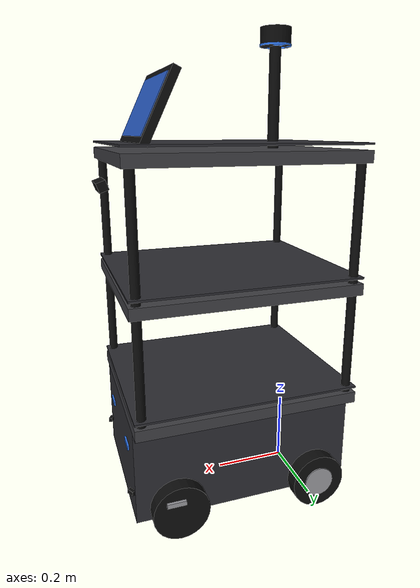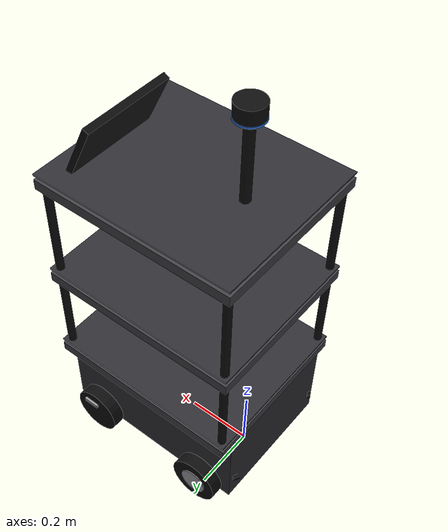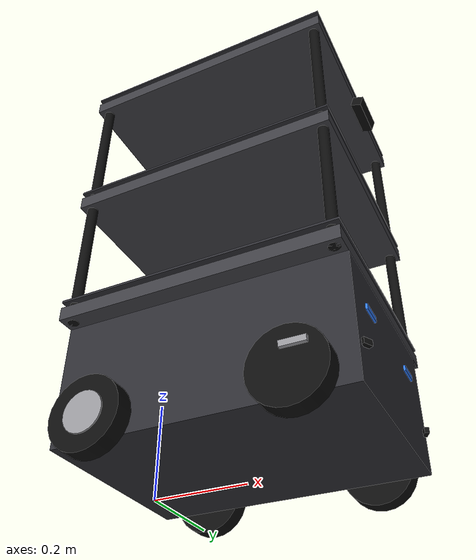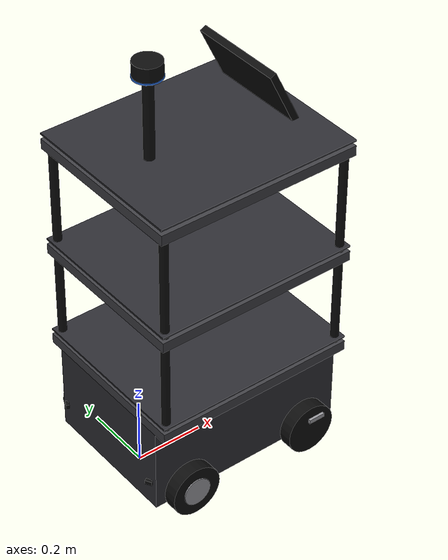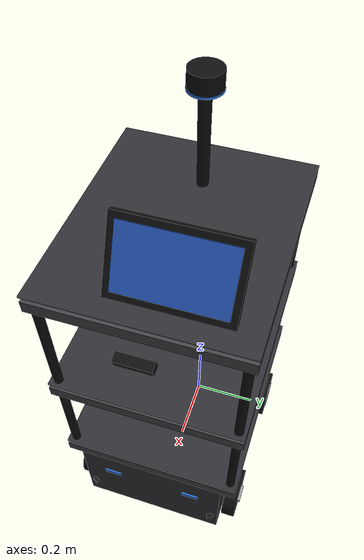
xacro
<?xml version="1.0"?>
<robot name="service_robot" xmlns:xacro="http://www.ros.org/wiki/xacro">

  <xacro:arg name="controllers_file" default="$(find amr_description)/config/service_controllers.yaml"/>

  <!-- ===================== Dimensions ===================== -->
  <xacro:property name="PI" value="3.14159265359"/>

  <xacro:property name="body_len"    value="0.60"/>   <!-- along x -->
  <xacro:property name="body_back_x" value="-0.10"/>  <!-- body extends 10 cm behind drive axle -->
  <xacro:property name="body_cx"     value="${body_back_x + body_len/2}"/>
  <xacro:property name="body_front_x" value="${body_back_x + body_len}"/>
  <xacro:property name="base_width"  value="0.42"/>   <!-- lower body, between the wheels -->
  <xacro:property name="base_z0"     value="0.04"/>   <!-- ground clearance -->
  <xacro:property name="base_z1"     value="0.30"/>
  <xacro:property name="tray_width"  value="0.50"/>
  <xacro:property name="tray_thick"  value="0.03"/>
  <xacro:property name="top_z"       value="0.95"/>   <!-- top tray -->

  <xacro:property name="wheel_radius"     value="0.075"/>
  <xacro:property name="wheel_width"      value="0.04"/>
  <xacro:property name="wheel_separation" value="0.47"/>
  <xacro:property name="front_x"          value="0.42"/>   <!-- swivel axis of front wheels -->
  <xacro:property name="caster_trail"     value="0.03"/>   <!-- wheel sits behind swivel axis -->
  <xacro:property name="fork_height"      value="0.05"/>

  <xacro:property name="lidar_z" value="1.25"/>
  <xacro:property name="mast_x"  value="0.05"/>

  <!-- ===================== Materials ===================== -->
  <material name="body_grey"><color rgba="0.18 0.18 0.20 1"/></material>
  <material name="tray_grey"><color rgba="0.25 0.25 0.27 1"/></material>
  <material name="black"><color rgba="0.05 0.05 0.05 1"/></material>
  <material name="metal"><color rgba="0.6 0.6 0.62 1"/></material>
  <material name="screen_blue"><color rgba="0.15 0.35 0.75 1"/></material>
  <material name="led_blue"><color rgba="0.2 0.5 1.0 1"/></material>

  <!-- ===================== Inertia helpers ===================== -->
  <xacro:macro name="box_inertial" params="m x y z *origin">
    <inertial>
      <xacro:insert_block name="origin"/>
      <mass value="${m}"/>
      <inertia ixx="${m*(y*y+z*z)/12}" ixy="0" ixz="0"
               iyy="${m*(x*x+z*z)/12}" iyz="0" izz="${m*(x*x+y*y)/12}"/>
    </inertial>
  </xacro:macro>
  <!-- cylinder whose axis is the link's y axis (wheels) -->
  <xacro:macro name="wheel_inertial" params="m r h">
    <inertial>
      <origin xyz="0 0 0" rpy="0 0 0"/>
      <mass value="${m}"/>
      <inertia ixx="${m*(3*r*r+h*h)/12}" ixy="0" ixz="0"
               iyy="${m*r*r/2}" iyz="0" izz="${m*(3*r*r+h*h)/12}"/>
    </inertial>
  </xacro:macro>

  <!-- ===================== Body ===================== -->
  <link name="base_link"/>

  <link name="chassis_link">
    <!-- Lower body: motors, batteries, controller (heavy, low) -->
    <xacro:box_inertial m="22.0" x="${body_len}" y="${base_width}" z="${base_z1-base_z0}">
      <origin xyz="${body_cx} 0 ${(base_z0+base_z1)/2}" rpy="0 0 0"/>
    </xacro:box_inertial>
    <visual>
      <origin xyz="${body_cx} 0 ${(base_z0+base_z1)/2}" rpy="0 0 0"/>
      <geometry><box size="${body_len} ${base_width} ${base_z1-base_z0}"/></geometry>
      <material name="body_grey"/>
    </visual>
    <collision>
      <origin xyz="${body_cx} 0 ${(base_z0+base_z1)/2}" rpy="0 0 0"/>
      <geometry><box size="${body_len} ${base_width} ${base_z1-base_z0}"/></geometry>
    </collision>
    <!-- Front status LEDs -->
    <visual>
      <origin xyz="${body_front_x+0.002} 0.12 0.22" rpy="0 0 0"/>
      <geometry><box size="0.005 0.05 0.012"/></geometry>
      <material name="led_blue"/>
    </visual>
    <visual>
      <origin xyz="${body_front_x+0.002} -0.12 0.22" rpy="0 0 0"/>
      <geometry><box size="0.005 0.05 0.012"/></geometry>
      <material name="led_blue"/>
    </visual>
  </link>
  <joint name="chassis_joint" type="fixed">
    <parent link="base_link"/>
    <child link="chassis_link"/>
    <origin xyz="0 0 0" rpy="0 0 0"/>
  </joint>

  <!-- Shelves: 3 trays on 4 posts (one collision box for the whole upper part) -->
  <link name="shelves_link">
    <xacro:box_inertial m="5.0" x="${body_len}" y="${tray_width}" z="${top_z-base_z1}">
      <origin xyz="${body_cx} 0 ${(base_z1+top_z)/2}" rpy="0 0 0"/>
    </xacro:box_inertial>
    <!-- bottom tray sits on the base -->
    <xacro:macro name="tray" params="z">
      <visual>
        <origin xyz="${body_cx} 0 ${z}" rpy="0 0 0"/>
        <geometry><box size="${body_len} ${tray_width} ${tray_thick}"/></geometry>
        <material name="tray_grey"/>
      </visual>
      <!-- tray lip -->
      <visual>
        <origin xyz="${body_cx} 0 ${z+0.03}" rpy="0 0 0"/>
        <geometry><box size="${body_len} ${tray_width} 0.005"/></geometry>
        <material name="body_grey"/>
      </visual>
    </xacro:macro>
    <xacro:tray z="${base_z1 + tray_thick/2}"/>
    <xacro:tray z="0.62"/>
    <xacro:tray z="${top_z}"/>
    <xacro:macro name="post" params="x y">
      <visual>
        <origin xyz="${x} ${y} ${(base_z1+top_z)/2}" rpy="0 0 0"/>
        <geometry><cylinder radius="0.012" length="${top_z-base_z1}"/></geometry>
        <material name="black"/>
      </visual>
    </xacro:macro>
    <xacro:post x="${body_back_x+0.02}"  y="${tray_width/2-0.02}"/>
    <xacro:post x="${body_back_x+0.02}"  y="${-(tray_width/2-0.02)}"/>
    <xacro:post x="${body_front_x-0.02}" y="${tray_width/2-0.02}"/>
    <xacro:post x="${body_front_x-0.02}" y="${-(tray_width/2-0.02)}"/>
    <collision>
      <origin xyz="${body_cx} 0 ${(base_z1+top_z)/2}" rpy="0 0 0"/>
      <geometry><box size="${body_len} ${tray_width} ${top_z-base_z1}"/></geometry>
    </collision>
  </link>
  <joint name="shelves_joint" type="fixed">
    <parent link="base_link"/>
    <child link="shelves_link"/>
    <origin xyz="0 0 0" rpy="0 0 0"/>
  </joint>

  <!-- Touchscreen (visual only), front of top tray, tilted back -->
  <link name="screen_link">
    <xacro:box_inertial m="0.8" x="0.02" y="0.28" z="0.18">
      <origin xyz="0 0 0" rpy="0 0 0"/>
    </xacro:box_inertial>
    <visual>
      <geometry><box size="0.02 0.28 0.18"/></geometry>
      <material name="black"/>
    </visual>
    <visual>
      <origin xyz="0.011 0 0" rpy="0 0 0"/>
      <geometry><box size="0.002 0.25 0.15"/></geometry>
      <material name="screen_blue"/>
    </visual>
  </link>
  <joint name="screen_joint" type="fixed">
    <parent link="base_link"/>
    <child link="screen_link"/>
    <origin xyz="0.40 0.05 ${top_z+0.11}" rpy="0 -0.45 0"/>
  </joint>

  <!-- Mast for the LiDAR -->
  <link name="mast_link">
    <xacro:box_inertial m="0.3" x="0.03" y="0.03" z="${lidar_z-top_z}">
      <origin xyz="0 0 ${(lidar_z-top_z)/2}" rpy="0 0 0"/>
    </xacro:box_inertial>
    <visual>
      <origin xyz="0 0 ${(lidar_z-0.03-top_z)/2}" rpy="0 0 0"/>
      <geometry><cylinder radius="0.015" length="${lidar_z-0.03-top_z}"/></geometry>
      <material name="black"/>
    </visual>
  </link>
  <joint name="mast_joint" type="fixed">
    <parent link="base_link"/>
    <child link="mast_link"/>
    <origin xyz="${mast_x} 0 ${top_z}" rpy="0 0 0"/>
  </joint>

  <!-- ===================== Drive wheels (rear, BLDC) ===================== -->
  <xacro:macro name="drive_wheel" params="side y sign">
    <link name="${side}_wheel_link">
      <xacro:wheel_inertial m="1.0" r="${wheel_radius}" h="${wheel_width}"/>
      <visual>
        <origin xyz="0 0 0" rpy="${PI/2} 0 0"/>
        <geometry><cylinder radius="${wheel_radius}" length="${wheel_width}"/></geometry>
        <material name="black"/>
      </visual>
      <!-- motor hub -->
      <visual>
        <origin xyz="0 ${sign*0.021} 0" rpy="${PI/2} 0 0"/>
        <geometry><cylinder radius="${wheel_radius*0.55}" length="0.004"/></geometry>
        <material name="metal"/>
      </visual>
      <collision>
        <geometry><sphere radius="${wheel_radius}"/></geometry>
      </collision>
    </link>
    <joint name="${side}_wheel_joint" type="continuous">
      <parent link="base_link"/>
      <child link="${side}_wheel_link"/>
      <origin xyz="0 ${y} ${wheel_radius}" rpy="0 0 0"/>
      <axis xyz="0 1 0"/>
    </joint>
  </xacro:macro>
  <xacro:drive_wheel side="left"  y="${wheel_separation/2}" sign="1"/>
  <xacro:drive_wheel side="right" y="${-wheel_separation/2}" sign="-1"/>

  <!-- ===================== Front wheels (passive, swivel) ===================== -->
  <xacro:macro name="front_wheel" params="side y">
    <link name="front_${side}_fork_link">
      <xacro:box_inertial m="0.2" x="0.04" y="0.05" z="${fork_height}">
        <origin xyz="${-caster_trail/2} 0 ${-fork_height/2}" rpy="0 0 0"/>
      </xacro:box_inertial>
      <visual>
        <origin xyz="${-caster_trail/2} 0 ${-fork_height/2+0.01}" rpy="0 0 0"/>
        <geometry><box size="0.05 0.055 0.012"/></geometry>
        <material name="metal"/>
      </visual>
    </link>
    <joint name="front_${side}_swivel_joint" type="continuous">
      <parent link="base_link"/>
      <child link="front_${side}_fork_link"/>
      <origin xyz="${front_x} ${y} ${wheel_radius+fork_height}" rpy="0 0 0"/>
      <axis xyz="0 0 1"/>
      <dynamics damping="0.01" friction="0.0"/>
    </joint>

    <link name="front_${side}_wheel_link">
      <xacro:wheel_inertial m="0.4" r="${wheel_radius}" h="${wheel_width}"/>
      <visual>
        <origin xyz="0 0 0" rpy="${PI/2} 0 0"/>
        <geometry><cylinder radius="${wheel_radius}" length="${wheel_width}"/></geometry>
        <material name="black"/>
      </visual>
      <collision>
        <geometry><sphere radius="${wheel_radius}"/></geometry>
      </collision>
    </link>
    <joint name="front_${side}_wheel_joint" type="continuous">
      <parent link="front_${side}_fork_link"/>
      <child link="front_${side}_wheel_link"/>
      <origin xyz="${-caster_trail} 0 ${-fork_height}" rpy="0 0 0"/>
      <axis xyz="0 1 0"/>
      <dynamics damping="0.001" friction="0.0"/>
    </joint>
  </xacro:macro>
  <xacro:front_wheel side="left"  y="${wheel_separation/2}"/>
  <xacro:front_wheel side="right" y="${-wheel_separation/2}"/>

  <!-- ===================== 360 deg LiDAR (top of mast) ===================== -->
  <link name="lidar_link">
    <xacro:box_inertial m="0.2" x="0.08" y="0.08" z="0.05">
      <origin xyz="0 0 -0.01" rpy="0 0 0"/>
    </xacro:box_inertial>
    <visual>
      <origin xyz="0 0 -0.01" rpy="0 0 0"/>
      <geometry><cylinder radius="0.04" length="0.045"/></geometry>
      <material name="black"/>
    </visual>
    <visual>
      <origin xyz="0 0 -0.03" rpy="0 0 0"/>
      <geometry><cylinder radius="0.041" length="0.005"/></geometry>
      <material name="led_blue"/>
    </visual>
  </link>
  <joint name="lidar_joint" type="fixed">
    <parent link="base_link"/>
    <child link="lidar_link"/>
    <origin xyz="${mast_x} 0 ${lidar_z}" rpy="0 0 0"/>
  </joint>
  <gazebo reference="lidar_link">
    <sensor name="lidar" type="gpu_lidar">
      <gz_frame_id>lidar_link</gz_frame_id>
      <topic>scan</topic>
      <update_rate>10</update_rate>
      <always_on>true</always_on>
      <visualize>false</visualize>
      <lidar>
        <scan>
          <horizontal>
            <samples>720</samples>
            <resolution>1</resolution>
            <min_angle>-3.14159265</min_angle>
            <max_angle>3.13286602</max_angle>  <!-- pi - 0.5 deg: no duplicate beam -->
          </horizontal>
          <vertical>
            <samples>1</samples><resolution>1</resolution>
            <min_angle>0</min_angle><max_angle>0</max_angle>
          </vertical>
        </scan>
        <range>
          <min>0.15</min>
          <max>12.0</max>
          <resolution>0.01</resolution>
        </range>
        <noise><type>gaussian</type><mean>0.0</mean><stddev>0.01</stddev></noise>
      </lidar>
    </sensor>
  </gazebo>

  <!-- ===================== RGB-D camera (RealSense D435i-like) ===================== -->
  <!-- Frame names follow the realsense2_camera driver so configs carry to hardware. -->
  <link name="camera_link">
    <xacro:box_inertial m="0.07" x="0.025" y="0.09" z="0.025">
      <origin xyz="0 0 0" rpy="0 0 0"/>
    </xacro:box_inertial>
    <visual>
      <geometry><box size="0.025 0.09 0.025"/></geometry>
      <material name="black"/>
    </visual>
  </link>
  <joint name="camera_joint" type="fixed">
    <parent link="base_link"/>
    <child link="camera_link"/>
    <!-- under the top tray at the front, tilted 20 deg down -->
    <origin xyz="${body_front_x+0.015} 0 0.88" rpy="0 0.35 0"/>
  </joint>
  <link name="camera_color_optical_frame"/>
  <joint name="camera_color_optical_joint" type="fixed">
    <parent link="camera_link"/>
    <child link="camera_color_optical_frame"/>
    <origin xyz="0 0 0" rpy="${-PI/2} 0 ${-PI/2}"/>
  </joint>
  <link name="camera_depth_optical_frame"/>
  <joint name="camera_depth_optical_joint" type="fixed">
    <parent link="camera_link"/>
    <child link="camera_depth_optical_frame"/>
    <origin xyz="0 0 0" rpy="${-PI/2} 0 ${-PI/2}"/>
  </joint>
  <gazebo reference="camera_link">
    <sensor name="rgbd_camera" type="rgbd_camera">
      <gz_frame_id>camera_link</gz_frame_id>
      <topic>camera</topic>
      <update_rate>15</update_rate>
      <always_on>true</always_on>
      <visualize>false</visualize>
      <camera>
        <horizontal_fov>1.518</horizontal_fov>  <!-- 87 deg, D435 depth -->
        <image>
          <width>424</width>
          <height>240</height>
          <format>R8G8B8</format>
        </image>
        <clip><near>0.1</near><far>10.0</far></clip>
        <depth_camera>
          <clip><near>0.2</near><far>5.0</far></clip>
        </depth_camera>
        <noise><type>gaussian</type><mean>0.0</mean><stddev>0.005</stddev></noise>
      </camera>
    </sensor>
  </gazebo>

  <!-- ===================== IMU (centre of chassis) ===================== -->
  <link name="imu_link"/>
  <joint name="imu_joint" type="fixed">
    <parent link="base_link"/>
    <child link="imu_link"/>
    <origin xyz="${body_cx} 0 0.15" rpy="0 0 0"/>
  </joint>
  <gazebo reference="imu_link">
    <sensor name="imu_sensor" type="imu">
      <topic>imu</topic>
      <gz_frame_id>imu_link</gz_frame_id>
      <update_rate>100</update_rate>
      <always_on>true</always_on>
      <imu>
        <angular_velocity>
          <x><noise type="gaussian"><mean>0.0</mean><stddev>0.01</stddev></noise></x>
          <y><noise type="gaussian"><mean>0.0</mean><stddev>0.01</stddev></noise></y>
          <z><noise type="gaussian"><mean>0.0</mean><stddev>0.01</stddev></noise></z>
        </angular_velocity>
        <linear_acceleration>
          <x><noise type="gaussian"><mean>0.0</mean><stddev>0.05</stddev></noise></x>
          <y><noise type="gaussian"><mean>0.0</mean><stddev>0.05</stddev></noise></y>
          <z><noise type="gaussian"><mean>0.0</mean><stddev>0.05</stddev></noise></z>
        </linear_acceleration>
      </imu>
    </sensor>
  </gazebo>

  <!-- ===================== 4 ToF sensors (low, on body corners) ===================== -->
  <!-- Short-range (2 m) narrow beams for close obstacles the mast LiDAR misses.
       Mounted 1 cm outside the body so they never see the robot itself. -->
  <xacro:macro name="tof" params="name x y yaw">
    <link name="${name}_link">
      <visual>
        <origin xyz="-0.005 0 0" rpy="0 0 0"/>
        <geometry><box size="0.01 0.02 0.012"/></geometry>
        <material name="black"/>
      </visual>
    </link>
    <joint name="${name}_joint" type="fixed">
      <parent link="base_link"/>
      <child link="${name}_link"/>
      <origin xyz="${x} ${y} 0.12" rpy="0 0 ${yaw}"/>
    </joint>
    <gazebo reference="${name}_link">
      <sensor name="${name}" type="gpu_lidar">
        <gz_frame_id>${name}_link</gz_frame_id>
        <topic>${name}</topic>
        <update_rate>20</update_rate>
        <always_on>true</always_on>
        <visualize>false</visualize>
        <lidar>
          <scan>
            <horizontal>
              <samples>5</samples><resolution>1</resolution>
              <min_angle>-0.218166</min_angle><max_angle>0.218166</max_angle>  <!-- 25 deg FoV -->
            </horizontal>
            <vertical>
              <samples>1</samples><resolution>1</resolution>
              <min_angle>0</min_angle><max_angle>0</max_angle>
            </vertical>
          </scan>
          <range><min>0.02</min><max>2.0</max><resolution>0.001</resolution></range>
        </lidar>
      </sensor>
    </gazebo>
  </xacro:macro>
  <xacro:tof name="tof_front_left"  x="${body_front_x+0.01}" y="${base_width/2-0.02}"    yaw="0.5"/>
  <xacro:tof name="tof_front_right" x="${body_front_x+0.01}" y="${-(base_width/2-0.02)}" yaw="-0.5"/>
  <xacro:tof name="tof_rear_left"   x="${body_back_x-0.01}"  y="${base_width/2-0.02}"    yaw="${PI-0.5}"/>
  <xacro:tof name="tof_rear_right"  x="${body_back_x-0.01}"  y="${-(base_width/2-0.02)}" yaw="${-(PI-0.5)}"/>

  <!-- ===================== ros2_control ===================== -->
  <ros2_control name="GazeboSimSystem" type="system">
    <hardware>
      <plugin>gz_ros2_control/GazeboSimSystem</plugin>
    </hardware>
    <!-- Drive wheels: velocity commands; positions = wheel encoders -->
    <joint name="left_wheel_joint">
      <command_interface name="velocity"/>
      <state_interface name="position"/>
      <state_interface name="velocity"/>
    </joint>
    <joint name="right_wheel_joint">
      <command_interface name="velocity"/>
      <state_interface name="position"/>
      <state_interface name="velocity"/>
    </joint>
    <!-- Passive front wheels: state only, so RViz/TF can show them turning -->
    <joint name="front_left_swivel_joint"><state_interface name="position"/></joint>
    <joint name="front_left_wheel_joint"><state_interface name="position"/></joint>
    <joint name="front_right_swivel_joint"><state_interface name="position"/></joint>
    <joint name="front_right_wheel_joint"><state_interface name="position"/></joint>
  </ros2_control>

  <gazebo>
    <plugin filename="libgz_ros2_control-system.so"
            name="gz_ros2_control::GazeboSimROS2ControlPlugin">
      <parameters>$(arg controllers_file)</parameters>
    </plugin>
  </gazebo>

</robot>
